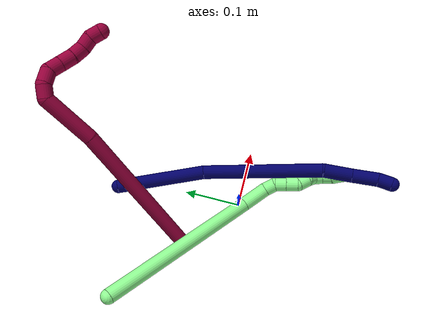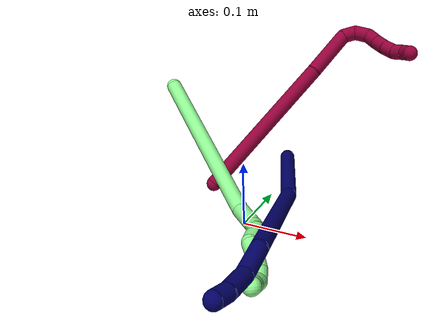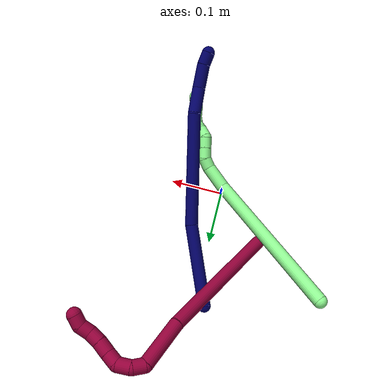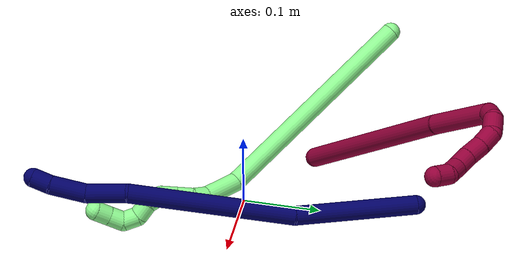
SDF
<sdf version="1.7">
 <world name="default">
  <model name="7">
   <static>0</static>
   <link name="7">
    <collision name="collision-cylinder-e_1_1_4">
     <pose>0.001303 0.028349 0.074705 -0.362692 0.016305 -0.00299</pose>
     <geometry><cylinder><radius>0.0125</radius><length>0.159827</length></cylinder></geometry>
     <surface>
      <friction><ode><mu>1.16</mu><mu2>1.16</mu2><slip1>0</slip1><slip2>0</slip2></ode></friction>
      <contact><ode><kp>1e+06</kp><kd>1</kd><max_vel>0</max_vel><min_depth>0.001</min_depth></ode></contact>
     </surface>
    </collision>
    <visual name="visual-cylinder-e_1_1_4">
     <pose>0.001303 0.028349 0.074705 -0.362692 0.016305 -0.00299</pose>
     <geometry><cylinder><radius>0.0125</radius><length>0.159827</length></cylinder></geometry>
     <material><ambient>0.003922 0 0.403922 1</ambient></material>
    </visual>
    <collision name="collision-cylinder-e_2_4_5">
     <pose>-0.013346 0.109987 0.242123 -0.52166 -0.148079 0.039591</pose>
     <geometry><cylinder><radius>0.0125</radius><length>0.21624</length></cylinder></geometry>
     <surface>
      <friction><ode><mu>1.16</mu><mu2>1.16</mu2><slip1>0</slip1><slip2>0</slip2></ode></friction>
      <contact><ode><kp>1e+06</kp><kd>1</kd><max_vel>0</max_vel><min_depth>0.001</min_depth></ode></contact>
     </surface>
    </collision>
    <visual name="visual-cylinder-e_2_4_5">
     <pose>-0.013346 0.109987 0.242123 -0.52166 -0.148079 0.039591</pose>
     <geometry><cylinder><radius>0.0125</radius><length>0.21624</length></cylinder></geometry>
     <material><ambient>0.003922 0 0.403922 1</ambient></material>
    </visual>
    <collision name="collision-cylinder-e_3_5_6">
     <pose>-0.037415 0.169493 0.358968 -0.252174 -0.314885 0.040242</pose>
     <geometry><cylinder><radius>0.0125</radius><length>0.052418</length></cylinder></geometry>
     <surface>
      <friction><ode><mu>1.16</mu><mu2>1.16</mu2><slip1>0</slip1><slip2>0</slip2></ode></friction>
      <contact><ode><kp>1e+06</kp><kd>1</kd><max_vel>0</max_vel><min_depth>0.001</min_depth></ode></contact>
     </surface>
    </collision>
    <visual name="visual-cylinder-e_3_5_6">
     <pose>-0.037415 0.169493 0.358968 -0.252174 -0.314885 0.040242</pose>
     <geometry><cylinder><radius>0.0125</radius><length>0.052418</length></cylinder></geometry>
     <material><ambient>0.003922 0 0.403922 1</ambient></material>
    </visual>
    <collision name="collision-cylinder-e_4_6_7">
     <pose>-0.052933 0.187127 0.402074 -0.541652 -0.322592 0.090291</pose>
     <geometry><cylinder><radius>0.0125</radius><length>0.046693</length></cylinder></geometry>
     <surface>
      <friction><ode><mu>1.16</mu><mu2>1.16</mu2><slip1>0</slip1><slip2>0</slip2></ode></friction>
      <contact><ode><kp>1e+06</kp><kd>1</kd><max_vel>0</max_vel><min_depth>0.001</min_depth></ode></contact>
     </surface>
    </collision>
    <visual name="visual-cylinder-e_4_6_7">
     <pose>-0.052933 0.187127 0.402074 -0.541652 -0.322592 0.090291</pose>
     <geometry><cylinder><radius>0.0125</radius><length>0.046693</length></cylinder></geometry>
     <material><ambient>0.003922 0 0.403922 1</ambient></material>
    </visual>
    <collision name="collision-cylinder-e_5_7_2">
     <pose>-0.066343 0.204881 0.429864 -0.623347 -0.505371 0.165991</pose>
     <geometry><cylinder><radius>0.0125</radius><length>0.024822</length></cylinder></geometry>
     <surface>
      <friction><ode><mu>1.16</mu><mu2>1.16</mu2><slip1>0</slip1><slip2>0</slip2></ode></friction>
      <contact><ode><kp>1e+06</kp><kd>1</kd><max_vel>0</max_vel><min_depth>0.001</min_depth></ode></contact>
     </surface>
    </collision>
    <visual name="visual-cylinder-e_5_7_2">
     <pose>-0.066343 0.204881 0.429864 -0.623347 -0.505371 0.165991</pose>
     <geometry><cylinder><radius>0.0125</radius><length>0.024822</length></cylinder></geometry>
     <material><ambient>0.003922 0 0.403922 1</ambient></material>
    </visual>
    <collision name="collision-sphere-2">
     <pose>-0.072352 0.211221 0.438681 0 -0 0</pose>
     <geometry><sphere><radius>0.0125</radius></sphere></geometry>
     <surface>
      <friction><ode><mu>1.16</mu><mu2>1.16</mu2><slip1>0</slip1><slip2>0</slip2></ode></friction>
      <contact><ode><kp>1e+06</kp><kd>1</kd><max_vel>0</max_vel><min_depth>0.001</min_depth></ode></contact>
     </surface>
    </collision>
    <visual name="visual-sphere-2">
     <pose>-0.072352 0.211221 0.438681 0 -0 0</pose>
     <geometry><sphere><radius>0.0125</radius></sphere></geometry>
     <material><ambient>0.003922 0 0.403922 1</ambient></material>
    </visual>
    <collision name="collision-sphere-7">
     <pose>-0.060335 0.198542 0.421046 0 -0 0</pose>
     <geometry><sphere><radius>0.0125</radius></sphere></geometry>
     <surface>
      <friction><ode><mu>1.16</mu><mu2>1.16</mu2><slip1>0</slip1><slip2>0</slip2></ode></friction>
      <contact><ode><kp>1e+06</kp><kd>1</kd><max_vel>0</max_vel><min_depth>0.001</min_depth></ode></contact>
     </surface>
    </collision>
    <visual name="visual-sphere-7">
     <pose>-0.060335 0.198542 0.421046 0 -0 0</pose>
     <geometry><sphere><radius>0.0125</radius></sphere></geometry>
     <material><ambient>0.003922 0 0.403922 1</ambient></material>
    </visual>
    <collision name="collision-sphere-6">
     <pose>-0.045532 0.175711 0.383101 0 -0 0</pose>
     <geometry><sphere><radius>0.0125</radius></sphere></geometry>
     <surface>
      <friction><ode><mu>1.16</mu><mu2>1.16</mu2><slip1>0</slip1><slip2>0</slip2></ode></friction>
      <contact><ode><kp>1e+06</kp><kd>1</kd><max_vel>0</max_vel><min_depth>0.001</min_depth></ode></contact>
     </surface>
    </collision>
    <visual name="visual-sphere-6">
     <pose>-0.045532 0.175711 0.383101 0 -0 0</pose>
     <geometry><sphere><radius>0.0125</radius></sphere></geometry>
     <material><ambient>0.003922 0 0.403922 1</ambient></material>
    </visual>
    <collision name="collision-sphere-5">
     <pose>-0.029298 0.163275 0.334836 0 -0 0</pose>
     <geometry><sphere><radius>0.0125</radius></sphere></geometry>
     <surface>
      <friction><ode><mu>1.16</mu><mu2>1.16</mu2><slip1>0</slip1><slip2>0</slip2></ode></friction>
      <contact><ode><kp>1e+06</kp><kd>1</kd><max_vel>0</max_vel><min_depth>0.001</min_depth></ode></contact>
     </surface>
    </collision>
    <visual name="visual-sphere-5">
     <pose>-0.029298 0.163275 0.334836 0 -0 0</pose>
     <geometry><sphere><radius>0.0125</radius></sphere></geometry>
     <material><ambient>0.003922 0 0.403922 1</ambient></material>
    </visual>
    <collision name="collision-sphere-1">
     <geometry><sphere><radius>0.0125</radius></sphere></geometry>
     <surface>
      <friction><ode><mu>1.16</mu><mu2>1.16</mu2><slip1>0</slip1><slip2>0</slip2></ode></friction>
      <contact><ode><kp>1e+06</kp><kd>1</kd><max_vel>0</max_vel><min_depth>0.001</min_depth></ode></contact>
     </surface>
    </collision>
    <visual name="visual-sphere-1">
     <geometry><sphere><radius>0.0125</radius></sphere></geometry>
     <material><ambient>0.003922 0 0.403922 1</ambient></material>
    </visual>
    <collision name="collision-sphere-4">
     <pose>0.002606 0.056698 0.149409 0 -0 0</pose>
     <geometry><sphere><radius>0.0125</radius></sphere></geometry>
     <surface>
      <friction><ode><mu>1.16</mu><mu2>1.16</mu2><slip1>0</slip1><slip2>0</slip2></ode></friction>
      <contact><ode><kp>1e+06</kp><kd>1</kd><max_vel>0</max_vel><min_depth>0.001</min_depth></ode></contact>
     </surface>
    </collision>
    <visual name="visual-sphere-4">
     <pose>0.002606 0.056698 0.149409 0 -0 0</pose>
     <geometry><sphere><radius>0.0125</radius></sphere></geometry>
     <material><ambient>0.003922 0 0.403922 1</ambient></material>
    </visual>
    <inertial>
     <pose>-0.017515 0.102044 0.225114 0 -0 0</pose>
     <mass>0.5</mass>
     <inertia>
      <ixx>0.001241</ixx>
      <ixy>0</ixy>
      <ixz>0</ixz>
      <iyy>0.001139</iyy>
      <iyz>0</iyz>
      <izz>-0.000389</izz>
     </inertia>
    </inertial>
   </link>
   <pose>-0.022331 0.222452 0.012488 1.88867 -0.12878 0.395527</pose>
  </model>
  <model name="8">
   <static>0</static>
   <link name="8">
    <collision name="collision-cylinder-e_1_1_4">
     <pose>-0.026673 -0.001109 0.127289 0.008712 -0.206548 -0.000903</pose>
     <geometry><cylinder><radius>0.0125</radius><length>0.260116</length></cylinder></geometry>
     <surface>
      <friction><ode><mu>1.16</mu><mu2>1.16</mu2><slip1>0</slip1><slip2>0</slip2></ode></friction>
      <contact><ode><kp>1e+06</kp><kd>1</kd><max_vel>0</max_vel><min_depth>0.001</min_depth></ode></contact>
     </surface>
    </collision>
    <visual name="visual-cylinder-e_1_1_4">
     <pose>-0.026673 -0.001109 0.127289 0.008712 -0.206548 -0.000903</pose>
     <geometry><cylinder><radius>0.0125</radius><length>0.260116</length></cylinder></geometry>
     <material><ambient>0.584314 0 0.227451 1</ambient></material>
    </visual>
    <collision name="collision-cylinder-e_2_4_5">
     <pose>-0.068061 -0.00536 0.295876 0.075946 -0.341388 -0.013097</pose>
     <geometry><cylinder><radius>0.0125</radius><length>0.087908</length></cylinder></geometry>
     <surface>
      <friction><ode><mu>1.16</mu><mu2>1.16</mu2><slip1>0</slip1><slip2>0</slip2></ode></friction>
      <contact><ode><kp>1e+06</kp><kd>1</kd><max_vel>0</max_vel><min_depth>0.001</min_depth></ode></contact>
     </surface>
    </collision>
    <visual name="visual-cylinder-e_2_4_5">
     <pose>-0.068061 -0.00536 0.295876 0.075946 -0.341388 -0.013097</pose>
     <geometry><cylinder><radius>0.0125</radius><length>0.087908</length></cylinder></geometry>
     <material><ambient>0.584314 0 0.227451 1</ambient></material>
    </visual>
    <collision name="collision-cylinder-e_3_5_6">
     <pose>-0.083334 -0.002085 0.345801 -0.639559 -0.051763 0.017144</pose>
     <geometry><cylinder><radius>0.0125</radius><length>0.021534</length></cylinder></geometry>
     <surface>
      <friction><ode><mu>1.16</mu><mu2>1.16</mu2><slip1>0</slip1><slip2>0</slip2></ode></friction>
      <contact><ode><kp>1e+06</kp><kd>1</kd><max_vel>0</max_vel><min_depth>0.001</min_depth></ode></contact>
     </surface>
    </collision>
    <visual name="visual-cylinder-e_3_5_6">
     <pose>-0.083334 -0.002085 0.345801 -0.639559 -0.051763 0.017144</pose>
     <geometry><cylinder><radius>0.0125</radius><length>0.021534</length></cylinder></geometry>
     <material><ambient>0.584314 0 0.227451 1</ambient></material>
    </visual>
    <collision name="collision-cylinder-e_4_6_7">
     <pose>-0.084142 0.015449 0.359107 -1.17248 -0.020809 0.01382</pose>
     <geometry><cylinder><radius>0.0125</radius><length>0.024127</length></cylinder></geometry>
     <surface>
      <friction><ode><mu>1.16</mu><mu2>1.16</mu2><slip1>0</slip1><slip2>0</slip2></ode></friction>
      <contact><ode><kp>1e+06</kp><kd>1</kd><max_vel>0</max_vel><min_depth>0.001</min_depth></ode></contact>
     </surface>
    </collision>
    <visual name="visual-cylinder-e_4_6_7">
     <pose>-0.084142 0.015449 0.359107 -1.17248 -0.020809 0.01382</pose>
     <geometry><cylinder><radius>0.0125</radius><length>0.024127</length></cylinder></geometry>
     <material><ambient>0.584314 0 0.227451 1</ambient></material>
    </visual>
    <collision name="collision-cylinder-e_5_7_8">
     <pose>-0.080517 0.036807 0.362768 -1.66976 0.36015 -0.396747</pose>
     <geometry><cylinder><radius>0.0125</radius><length>0.021996</length></cylinder></geometry>
     <surface>
      <friction><ode><mu>1.16</mu><mu2>1.16</mu2><slip1>0</slip1><slip2>0</slip2></ode></friction>
      <contact><ode><kp>1e+06</kp><kd>1</kd><max_vel>0</max_vel><min_depth>0.001</min_depth></ode></contact>
     </surface>
    </collision>
    <visual name="visual-cylinder-e_5_7_8">
     <pose>-0.080517 0.036807 0.362768 -1.66976 0.36015 -0.396747</pose>
     <geometry><cylinder><radius>0.0125</radius><length>0.021996</length></cylinder></geometry>
     <material><ambient>0.584314 0 0.227451 1</ambient></material>
    </visual>
    <collision name="collision-cylinder-e_6_8_9">
     <pose>-0.071065 0.057245 0.361196 -1.62516 0.499859 -0.526555</pose>
     <geometry><cylinder><radius>0.0125</radius><length>0.023268</length></cylinder></geometry>
     <surface>
      <friction><ode><mu>1.16</mu><mu2>1.16</mu2><slip1>0</slip1><slip2>0</slip2></ode></friction>
      <contact><ode><kp>1e+06</kp><kd>1</kd><max_vel>0</max_vel><min_depth>0.001</min_depth></ode></contact>
     </surface>
    </collision>
    <visual name="visual-cylinder-e_6_8_9">
     <pose>-0.071065 0.057245 0.361196 -1.62516 0.499859 -0.526555</pose>
     <geometry><cylinder><radius>0.0125</radius><length>0.023268</length></cylinder></geometry>
     <material><ambient>0.584314 0 0.227451 1</ambient></material>
    </visual>
    <collision name="collision-cylinder-e_7_9_10">
     <pose>-0.061124 0.076983 0.361418 -1.48958 0.427744 -0.395241</pose>
     <geometry><cylinder><radius>0.0125</radius><length>0.021045</length></cylinder></geometry>
     <surface>
      <friction><ode><mu>1.16</mu><mu2>1.16</mu2><slip1>0</slip1><slip2>0</slip2></ode></friction>
      <contact><ode><kp>1e+06</kp><kd>1</kd><max_vel>0</max_vel><min_depth>0.001</min_depth></ode></contact>
     </surface>
    </collision>
    <visual name="visual-cylinder-e_7_9_10">
     <pose>-0.061124 0.076983 0.361418 -1.48958 0.427744 -0.395241</pose>
     <geometry><cylinder><radius>0.0125</radius><length>0.021045</length></cylinder></geometry>
     <material><ambient>0.584314 0 0.227451 1</ambient></material>
    </visual>
    <collision name="collision-cylinder-e_8_10_11">
     <pose>-0.052107 0.09459 0.365849 -1.14526 0.48379 -0.315478</pose>
     <geometry><cylinder><radius>0.0125</radius><length>0.020001</length></cylinder></geometry>
     <surface>
      <friction><ode><mu>1.16</mu><mu2>1.16</mu2><slip1>0</slip1><slip2>0</slip2></ode></friction>
      <contact><ode><kp>1e+06</kp><kd>1</kd><max_vel>0</max_vel><min_depth>0.001</min_depth></ode></contact>
     </surface>
    </collision>
    <visual name="visual-cylinder-e_8_10_11">
     <pose>-0.052107 0.09459 0.365849 -1.14526 0.48379 -0.315478</pose>
     <geometry><cylinder><radius>0.0125</radius><length>0.020001</length></cylinder></geometry>
     <material><ambient>0.584314 0 0.227451 1</ambient></material>
    </visual>
    <collision name="collision-cylinder-e_9_11_2">
     <pose>-0.039391 0.108525 0.370235 -1.44685 0.937703 -0.841264</pose>
     <geometry><cylinder><radius>0.0125</radius><length>0.020005</length></cylinder></geometry>
     <surface>
      <friction><ode><mu>1.16</mu><mu2>1.16</mu2><slip1>0</slip1><slip2>0</slip2></ode></friction>
      <contact><ode><kp>1e+06</kp><kd>1</kd><max_vel>0</max_vel><min_depth>0.001</min_depth></ode></contact>
     </surface>
    </collision>
    <visual name="visual-cylinder-e_9_11_2">
     <pose>-0.039391 0.108525 0.370235 -1.44685 0.937703 -0.841264</pose>
     <geometry><cylinder><radius>0.0125</radius><length>0.020005</length></cylinder></geometry>
     <material><ambient>0.584314 0 0.227451 1</ambient></material>
    </visual>
    <collision name="collision-sphere-2">
     <pose>-0.031327 0.114398 0.370967 0 -0 0</pose>
     <geometry><sphere><radius>0.0125</radius></sphere></geometry>
     <surface>
      <friction><ode><mu>1.16</mu><mu2>1.16</mu2><slip1>0</slip1><slip2>0</slip2></ode></friction>
      <contact><ode><kp>1e+06</kp><kd>1</kd><max_vel>0</max_vel><min_depth>0.001</min_depth></ode></contact>
     </surface>
    </collision>
    <visual name="visual-sphere-2">
     <pose>-0.031327 0.114398 0.370967 0 -0 0</pose>
     <geometry><sphere><radius>0.0125</radius></sphere></geometry>
     <material><ambient>0.584314 0 0.227451 1</ambient></material>
    </visual>
    <collision name="collision-sphere-11">
     <pose>-0.047455 0.102653 0.369504 0 -0 0</pose>
     <geometry><sphere><radius>0.0125</radius></sphere></geometry>
     <surface>
      <friction><ode><mu>1.16</mu><mu2>1.16</mu2><slip1>0</slip1><slip2>0</slip2></ode></friction>
      <contact><ode><kp>1e+06</kp><kd>1</kd><max_vel>0</max_vel><min_depth>0.001</min_depth></ode></contact>
     </surface>
    </collision>
    <visual name="visual-sphere-11">
     <pose>-0.047455 0.102653 0.369504 0 -0 0</pose>
     <geometry><sphere><radius>0.0125</radius></sphere></geometry>
     <material><ambient>0.584314 0 0.227451 1</ambient></material>
    </visual>
    <collision name="collision-sphere-10">
     <pose>-0.056759 0.086526 0.362195 0 -0 0</pose>
     <geometry><sphere><radius>0.0125</radius></sphere></geometry>
     <surface>
      <friction><ode><mu>1.16</mu><mu2>1.16</mu2><slip1>0</slip1><slip2>0</slip2></ode></friction>
      <contact><ode><kp>1e+06</kp><kd>1</kd><max_vel>0</max_vel><min_depth>0.001</min_depth></ode></contact>
     </surface>
    </collision>
    <visual name="visual-sphere-10">
     <pose>-0.056759 0.086526 0.362195 0 -0 0</pose>
     <geometry><sphere><radius>0.0125</radius></sphere></geometry>
     <material><ambient>0.584314 0 0.227451 1</ambient></material>
    </visual>
    <collision name="collision-sphere-9">
     <pose>-0.065489 0.06744 0.360641 0 -0 0</pose>
     <geometry><sphere><radius>0.0125</radius></sphere></geometry>
     <surface>
      <friction><ode><mu>1.16</mu><mu2>1.16</mu2><slip1>0</slip1><slip2>0</slip2></ode></friction>
      <contact><ode><kp>1e+06</kp><kd>1</kd><max_vel>0</max_vel><min_depth>0.001</min_depth></ode></contact>
     </surface>
    </collision>
    <visual name="visual-sphere-9">
     <pose>-0.065489 0.06744 0.360641 0 -0 0</pose>
     <geometry><sphere><radius>0.0125</radius></sphere></geometry>
     <material><ambient>0.584314 0 0.227451 1</ambient></material>
    </visual>
    <collision name="collision-sphere-4">
     <pose>-0.053345 -0.002218 0.254577 0 -0 0</pose>
     <geometry><sphere><radius>0.0125</radius></sphere></geometry>
     <surface>
      <friction><ode><mu>1.16</mu><mu2>1.16</mu2><slip1>0</slip1><slip2>0</slip2></ode></friction>
      <contact><ode><kp>1e+06</kp><kd>1</kd><max_vel>0</max_vel><min_depth>0.001</min_depth></ode></contact>
     </surface>
    </collision>
    <visual name="visual-sphere-4">
     <pose>-0.053345 -0.002218 0.254577 0 -0 0</pose>
     <geometry><sphere><radius>0.0125</radius></sphere></geometry>
     <material><ambient>0.584314 0 0.227451 1</ambient></material>
    </visual>
    <collision name="collision-sphere-1">
     <geometry><sphere><radius>0.0125</radius></sphere></geometry>
     <surface>
      <friction><ode><mu>1.16</mu><mu2>1.16</mu2><slip1>0</slip1><slip2>0</slip2></ode></friction>
      <contact><ode><kp>1e+06</kp><kd>1</kd><max_vel>0</max_vel><min_depth>0.001</min_depth></ode></contact>
     </surface>
    </collision>
    <visual name="visual-sphere-1">
     <geometry><sphere><radius>0.0125</radius></sphere></geometry>
     <material><ambient>0.584314 0 0.227451 1</ambient></material>
    </visual>
    <collision name="collision-sphere-8">
     <pose>-0.076641 0.047049 0.361751 0 -0 0</pose>
     <geometry><sphere><radius>0.0125</radius></sphere></geometry>
     <surface>
      <friction><ode><mu>1.16</mu><mu2>1.16</mu2><slip1>0</slip1><slip2>0</slip2></ode></friction>
      <contact><ode><kp>1e+06</kp><kd>1</kd><max_vel>0</max_vel><min_depth>0.001</min_depth></ode></contact>
     </surface>
    </collision>
    <visual name="visual-sphere-8">
     <pose>-0.076641 0.047049 0.361751 0 -0 0</pose>
     <geometry><sphere><radius>0.0125</radius></sphere></geometry>
     <material><ambient>0.584314 0 0.227451 1</ambient></material>
    </visual>
    <collision name="collision-sphere-5">
     <pose>-0.082777 -0.008503 0.337174 0 -0 0</pose>
     <geometry><sphere><radius>0.0125</radius></sphere></geometry>
     <surface>
      <friction><ode><mu>1.16</mu><mu2>1.16</mu2><slip1>0</slip1><slip2>0</slip2></ode></friction>
      <contact><ode><kp>1e+06</kp><kd>1</kd><max_vel>0</max_vel><min_depth>0.001</min_depth></ode></contact>
     </surface>
    </collision>
    <visual name="visual-sphere-5">
     <pose>-0.082777 -0.008503 0.337174 0 -0 0</pose>
     <geometry><sphere><radius>0.0125</radius></sphere></geometry>
     <material><ambient>0.584314 0 0.227451 1</ambient></material>
    </visual>
    <collision name="collision-sphere-6">
     <pose>-0.083891 0.004332 0.354429 0 -0 0</pose>
     <geometry><sphere><radius>0.0125</radius></sphere></geometry>
     <surface>
      <friction><ode><mu>1.16</mu><mu2>1.16</mu2><slip1>0</slip1><slip2>0</slip2></ode></friction>
      <contact><ode><kp>1e+06</kp><kd>1</kd><max_vel>0</max_vel><min_depth>0.001</min_depth></ode></contact>
     </surface>
    </collision>
    <visual name="visual-sphere-6">
     <pose>-0.083891 0.004332 0.354429 0 -0 0</pose>
     <geometry><sphere><radius>0.0125</radius></sphere></geometry>
     <material><ambient>0.584314 0 0.227451 1</ambient></material>
    </visual>
    <collision name="collision-sphere-7">
     <pose>-0.084393 0.026565 0.363785 0 -0 0</pose>
     <geometry><sphere><radius>0.0125</radius></sphere></geometry>
     <surface>
      <friction><ode><mu>1.16</mu><mu2>1.16</mu2><slip1>0</slip1><slip2>0</slip2></ode></friction>
      <contact><ode><kp>1e+06</kp><kd>1</kd><max_vel>0</max_vel><min_depth>0.001</min_depth></ode></contact>
     </surface>
    </collision>
    <visual name="visual-sphere-7">
     <pose>-0.084393 0.026565 0.363785 0 -0 0</pose>
     <geometry><sphere><radius>0.0125</radius></sphere></geometry>
     <material><ambient>0.584314 0 0.227451 1</ambient></material>
    </visual>
    <inertial>
     <pose>-0.046574 0.014786 0.227888 0 -0 0</pose>
     <mass>0.5</mass>
     <inertia>
      <ixx>0.001504</ixx>
      <ixy>0</ixy>
      <ixz>0</ixz>
      <iyy>0.001545</iyy>
      <iyz>0</iyz>
      <izz>0.000355</izz>
     </inertia>
    </inertial>
   </link>
   <pose>-0.094558 0.076383 0.011497 -0.548713 -0.519821 -1.44415</pose>
  </model>
  <model name="13">
   <static>0</static>
   <link name="13">
    <collision name="collision-cylinder-e_1_1_4">
     <pose>0.04517 -0.069839 0.119369 0.529369 0.315689 0.08623</pose>
     <geometry><cylinder><radius>0.0125</radius><length>0.290977</length></cylinder></geometry>
     <surface>
      <friction><ode><mu>1.16</mu><mu2>1.16</mu2><slip1>0</slip1><slip2>0</slip2></ode></friction>
      <contact><ode><kp>1e+06</kp><kd>1</kd><max_vel>0</max_vel><min_depth>0.001</min_depth></ode></contact>
     </surface>
    </collision>
    <visual name="visual-cylinder-e_1_1_4">
     <pose>0.04517 -0.069839 0.119369 0.529369 0.315689 0.08623</pose>
     <geometry><cylinder><radius>0.0125</radius><length>0.290977</length></cylinder></geometry>
     <material><ambient>0.564706 0.984314 0.572549 1</ambient></material>
    </visual>
    <collision name="collision-cylinder-e_2_4_5">
     <pose>0.103971 -0.154241 0.251774 0.840657 0.609019 0.279123</pose>
     <geometry><cylinder><radius>0.0125</radius><length>0.047657</length></cylinder></geometry>
     <surface>
      <friction><ode><mu>1.16</mu><mu2>1.16</mu2><slip1>0</slip1><slip2>0</slip2></ode></friction>
      <contact><ode><kp>1e+06</kp><kd>1</kd><max_vel>0</max_vel><min_depth>0.001</min_depth></ode></contact>
     </surface>
    </collision>
    <visual name="visual-cylinder-e_2_4_5">
     <pose>0.103971 -0.154241 0.251774 0.840657 0.609019 0.279123</pose>
     <geometry><cylinder><radius>0.0125</radius><length>0.047657</length></cylinder></geometry>
     <material><ambient>0.564706 0.984314 0.572549 1</ambient></material>
    </visual>
    <collision name="collision-cylinder-e_3_5_6">
     <pose>0.125503 -0.173982 0.268286 0.979709 0.902401 0.505654</pose>
     <geometry><cylinder><radius>0.0125</radius><length>0.020132</length></cylinder></geometry>
     <surface>
      <friction><ode><mu>1.16</mu><mu2>1.16</mu2><slip1>0</slip1><slip2>0</slip2></ode></friction>
      <contact><ode><kp>1e+06</kp><kd>1</kd><max_vel>0</max_vel><min_depth>0.001</min_depth></ode></contact>
     </surface>
    </collision>
    <visual name="visual-cylinder-e_3_5_6">
     <pose>0.125503 -0.173982 0.268286 0.979709 0.902401 0.505654</pose>
     <geometry><cylinder><radius>0.0125</radius><length>0.020132</length></cylinder></geometry>
     <material><ambient>0.564706 0.984314 0.572549 1</ambient></material>
    </visual>
    <collision name="collision-cylinder-e_4_6_7">
     <pose>0.142486 -0.179927 0.276067 0.175705 1.12212 0.11059</pose>
     <geometry><cylinder><radius>0.0125</radius><length>0.020162</length></cylinder></geometry>
     <surface>
      <friction><ode><mu>1.16</mu><mu2>1.16</mu2><slip1>0</slip1><slip2>0</slip2></ode></friction>
      <contact><ode><kp>1e+06</kp><kd>1</kd><max_vel>0</max_vel><min_depth>0.001</min_depth></ode></contact>
     </surface>
    </collision>
    <visual name="visual-cylinder-e_4_6_7">
     <pose>0.142486 -0.179927 0.276067 0.175705 1.12212 0.11059</pose>
     <geometry><cylinder><radius>0.0125</radius><length>0.020162</length></cylinder></geometry>
     <material><ambient>0.564706 0.984314 0.572549 1</ambient></material>
    </visual>
    <collision name="collision-cylinder-e_5_7_8">
     <pose>0.160941 -0.181522 0.284832 0.184177 1.1201 0.115681</pose>
     <geometry><cylinder><radius>0.0125</radius><length>0.020824</length></cylinder></geometry>
     <surface>
      <friction><ode><mu>1.16</mu><mu2>1.16</mu2><slip1>0</slip1><slip2>0</slip2></ode></friction>
      <contact><ode><kp>1e+06</kp><kd>1</kd><max_vel>0</max_vel><min_depth>0.001</min_depth></ode></contact>
     </surface>
    </collision>
    <visual name="visual-cylinder-e_5_7_8">
     <pose>0.160941 -0.181522 0.284832 0.184177 1.1201 0.115681</pose>
     <geometry><cylinder><radius>0.0125</radius><length>0.020824</length></cylinder></geometry>
     <material><ambient>0.564706 0.984314 0.572549 1</ambient></material>
    </visual>
    <collision name="collision-cylinder-e_6_8_9">
     <pose>0.175309 -0.186659 0.296921 0.513887 0.518167 0.139055</pose>
     <geometry><cylinder><radius>0.0125</radius><length>0.020172</length></cylinder></geometry>
     <surface>
      <friction><ode><mu>1.16</mu><mu2>1.16</mu2><slip1>0</slip1><slip2>0</slip2></ode></friction>
      <contact><ode><kp>1e+06</kp><kd>1</kd><max_vel>0</max_vel><min_depth>0.001</min_depth></ode></contact>
     </surface>
    </collision>
    <visual name="visual-cylinder-e_6_8_9">
     <pose>0.175309 -0.186659 0.296921 0.513887 0.518167 0.139055</pose>
     <geometry><cylinder><radius>0.0125</radius><length>0.020172</length></cylinder></geometry>
     <material><ambient>0.564706 0.984314 0.572549 1</ambient></material>
    </visual>
    <collision name="collision-cylinder-e_7_9_10">
     <pose>0.181332 -0.192942 0.314334 0.199225 0.102576 0.010261</pose>
     <geometry><cylinder><radius>0.0125</radius><length>0.020067</length></cylinder></geometry>
     <surface>
      <friction><ode><mu>1.16</mu><mu2>1.16</mu2><slip1>0</slip1><slip2>0</slip2></ode></friction>
      <contact><ode><kp>1e+06</kp><kd>1</kd><max_vel>0</max_vel><min_depth>0.001</min_depth></ode></contact>
     </surface>
    </collision>
    <visual name="visual-cylinder-e_7_9_10">
     <pose>0.181332 -0.192942 0.314334 0.199225 0.102576 0.010261</pose>
     <geometry><cylinder><radius>0.0125</radius><length>0.020067</length></cylinder></geometry>
     <material><ambient>0.564706 0.984314 0.572549 1</ambient></material>
    </visual>
    <collision name="collision-cylinder-e_8_10_11">
     <pose>0.188818 -0.19629 0.331629 0.180787 0.702063 0.06636</pose>
     <geometry><cylinder><radius>0.0125</radius><length>0.020003</length></cylinder></geometry>
     <surface>
      <friction><ode><mu>1.16</mu><mu2>1.16</mu2><slip1>0</slip1><slip2>0</slip2></ode></friction>
      <contact><ode><kp>1e+06</kp><kd>1</kd><max_vel>0</max_vel><min_depth>0.001</min_depth></ode></contact>
     </surface>
    </collision>
    <visual name="visual-cylinder-e_8_10_11">
     <pose>0.188818 -0.19629 0.331629 0.180787 0.702063 0.06636</pose>
     <geometry><cylinder><radius>0.0125</radius><length>0.020003</length></cylinder></geometry>
     <material><ambient>0.564706 0.984314 0.572549 1</ambient></material>
    </visual>
    <collision name="collision-cylinder-e_9_11_12">
     <pose>0.205173 -0.198424 0.340365 0.556212 1.42619 0.484191</pose>
     <geometry><cylinder><radius>0.0125</radius><length>0.02</length></cylinder></geometry>
     <surface>
      <friction><ode><mu>1.16</mu><mu2>1.16</mu2><slip1>0</slip1><slip2>0</slip2></ode></friction>
      <contact><ode><kp>1e+06</kp><kd>1</kd><max_vel>0</max_vel><min_depth>0.001</min_depth></ode></contact>
     </surface>
    </collision>
    <visual name="visual-cylinder-e_9_11_12">
     <pose>0.205173 -0.198424 0.340365 0.556212 1.42619 0.484191</pose>
     <geometry><cylinder><radius>0.0125</radius><length>0.02</length></cylinder></geometry>
     <material><ambient>0.564706 0.984314 0.572549 1</ambient></material>
    </visual>
    <collision name="collision-cylinder-e_10_12_2">
     <pose>0.224744 -0.201697 0.341973 1.41911 1.31391 1.16995</pose>
     <geometry><cylinder><radius>0.0125</radius><length>0.020007</length></cylinder></geometry>
     <surface>
      <friction><ode><mu>1.16</mu><mu2>1.16</mu2><slip1>0</slip1><slip2>0</slip2></ode></friction>
      <contact><ode><kp>1e+06</kp><kd>1</kd><max_vel>0</max_vel><min_depth>0.001</min_depth></ode></contact>
     </surface>
    </collision>
    <visual name="visual-cylinder-e_10_12_2">
     <pose>0.224744 -0.201697 0.341973 1.41911 1.31391 1.16995</pose>
     <geometry><cylinder><radius>0.0125</radius><length>0.020007</length></cylinder></geometry>
     <material><ambient>0.564706 0.984314 0.572549 1</ambient></material>
    </visual>
    <collision name="collision-sphere-2">
     <pose>0.234419 -0.20421 0.342357 0 -0 0</pose>
     <geometry><sphere><radius>0.0125</radius></sphere></geometry>
     <surface>
      <friction><ode><mu>1.16</mu><mu2>1.16</mu2><slip1>0</slip1><slip2>0</slip2></ode></friction>
      <contact><ode><kp>1e+06</kp><kd>1</kd><max_vel>0</max_vel><min_depth>0.001</min_depth></ode></contact>
     </surface>
    </collision>
    <visual name="visual-sphere-2">
     <pose>0.234419 -0.20421 0.342357 0 -0 0</pose>
     <geometry><sphere><radius>0.0125</radius></sphere></geometry>
     <material><ambient>0.564706 0.984314 0.572549 1</ambient></material>
    </visual>
    <collision name="collision-sphere-12">
     <pose>0.215068 -0.199185 0.341589 0 -0 0</pose>
     <geometry><sphere><radius>0.0125</radius></sphere></geometry>
     <surface>
      <friction><ode><mu>1.16</mu><mu2>1.16</mu2><slip1>0</slip1><slip2>0</slip2></ode></friction>
      <contact><ode><kp>1e+06</kp><kd>1</kd><max_vel>0</max_vel><min_depth>0.001</min_depth></ode></contact>
     </surface>
    </collision>
    <visual name="visual-sphere-12">
     <pose>0.215068 -0.199185 0.341589 0 -0 0</pose>
     <geometry><sphere><radius>0.0125</radius></sphere></geometry>
     <material><ambient>0.564706 0.984314 0.572549 1</ambient></material>
    </visual>
    <collision name="collision-sphere-11">
     <pose>0.195277 -0.197663 0.339141 0 -0 0</pose>
     <geometry><sphere><radius>0.0125</radius></sphere></geometry>
     <surface>
      <friction><ode><mu>1.16</mu><mu2>1.16</mu2><slip1>0</slip1><slip2>0</slip2></ode></friction>
      <contact><ode><kp>1e+06</kp><kd>1</kd><max_vel>0</max_vel><min_depth>0.001</min_depth></ode></contact>
     </surface>
    </collision>
    <visual name="visual-sphere-11">
     <pose>0.195277 -0.197663 0.339141 0 -0 0</pose>
     <geometry><sphere><radius>0.0125</radius></sphere></geometry>
     <material><ambient>0.564706 0.984314 0.572549 1</ambient></material>
    </visual>
    <collision name="collision-sphere-10">
     <pose>0.182359 -0.194917 0.324117 0 -0 0</pose>
     <geometry><sphere><radius>0.0125</radius></sphere></geometry>
     <surface>
      <friction><ode><mu>1.16</mu><mu2>1.16</mu2><slip1>0</slip1><slip2>0</slip2></ode></friction>
      <contact><ode><kp>1e+06</kp><kd>1</kd><max_vel>0</max_vel><min_depth>0.001</min_depth></ode></contact>
     </surface>
    </collision>
    <visual name="visual-sphere-10">
     <pose>0.182359 -0.194917 0.324117 0 -0 0</pose>
     <geometry><sphere><radius>0.0125</radius></sphere></geometry>
     <material><ambient>0.564706 0.984314 0.572549 1</ambient></material>
    </visual>
    <collision name="collision-sphere-9">
     <pose>0.180304 -0.190966 0.304551 0 -0 0</pose>
     <geometry><sphere><radius>0.0125</radius></sphere></geometry>
     <surface>
      <friction><ode><mu>1.16</mu><mu2>1.16</mu2><slip1>0</slip1><slip2>0</slip2></ode></friction>
      <contact><ode><kp>1e+06</kp><kd>1</kd><max_vel>0</max_vel><min_depth>0.001</min_depth></ode></contact>
     </surface>
    </collision>
    <visual name="visual-sphere-9">
     <pose>0.180304 -0.190966 0.304551 0 -0 0</pose>
     <geometry><sphere><radius>0.0125</radius></sphere></geometry>
     <material><ambient>0.564706 0.984314 0.572549 1</ambient></material>
    </visual>
    <collision name="collision-sphere-4">
     <pose>0.09034 -0.139678 0.238738 0 -0 0</pose>
     <geometry><sphere><radius>0.0125</radius></sphere></geometry>
     <surface>
      <friction><ode><mu>1.16</mu><mu2>1.16</mu2><slip1>0</slip1><slip2>0</slip2></ode></friction>
      <contact><ode><kp>1e+06</kp><kd>1</kd><max_vel>0</max_vel><min_depth>0.001</min_depth></ode></contact>
     </surface>
    </collision>
    <visual name="visual-sphere-4">
     <pose>0.09034 -0.139678 0.238738 0 -0 0</pose>
     <geometry><sphere><radius>0.0125</radius></sphere></geometry>
     <material><ambient>0.564706 0.984314 0.572549 1</ambient></material>
    </visual>
    <collision name="collision-sphere-1">
     <geometry><sphere><radius>0.0125</radius></sphere></geometry>
     <surface>
      <friction><ode><mu>1.16</mu><mu2>1.16</mu2><slip1>0</slip1><slip2>0</slip2></ode></friction>
      <contact><ode><kp>1e+06</kp><kd>1</kd><max_vel>0</max_vel><min_depth>0.001</min_depth></ode></contact>
     </surface>
    </collision>
    <visual name="visual-sphere-1">
     <geometry><sphere><radius>0.0125</radius></sphere></geometry>
     <material><ambient>0.564706 0.984314 0.572549 1</ambient></material>
    </visual>
    <collision name="collision-sphere-8">
     <pose>0.170313 -0.182352 0.28929 0 -0 0</pose>
     <geometry><sphere><radius>0.0125</radius></sphere></geometry>
     <surface>
      <friction><ode><mu>1.16</mu><mu2>1.16</mu2><slip1>0</slip1><slip2>0</slip2></ode></friction>
      <contact><ode><kp>1e+06</kp><kd>1</kd><max_vel>0</max_vel><min_depth>0.001</min_depth></ode></contact>
     </surface>
    </collision>
    <visual name="visual-sphere-8">
     <pose>0.170313 -0.182352 0.28929 0 -0 0</pose>
     <geometry><sphere><radius>0.0125</radius></sphere></geometry>
     <material><ambient>0.564706 0.984314 0.572549 1</ambient></material>
    </visual>
    <collision name="collision-sphere-5">
     <pose>0.117603 -0.168803 0.264809 0 -0 0</pose>
     <geometry><sphere><radius>0.0125</radius></sphere></geometry>
     <surface>
      <friction><ode><mu>1.16</mu><mu2>1.16</mu2><slip1>0</slip1><slip2>0</slip2></ode></friction>
      <contact><ode><kp>1e+06</kp><kd>1</kd><max_vel>0</max_vel><min_depth>0.001</min_depth></ode></contact>
     </surface>
    </collision>
    <visual name="visual-sphere-5">
     <pose>0.117603 -0.168803 0.264809 0 -0 0</pose>
     <geometry><sphere><radius>0.0125</radius></sphere></geometry>
     <material><ambient>0.564706 0.984314 0.572549 1</ambient></material>
    </visual>
    <collision name="collision-sphere-6">
     <pose>0.133403 -0.179162 0.271762 0 -0 0</pose>
     <geometry><sphere><radius>0.0125</radius></sphere></geometry>
     <surface>
      <friction><ode><mu>1.16</mu><mu2>1.16</mu2><slip1>0</slip1><slip2>0</slip2></ode></friction>
      <contact><ode><kp>1e+06</kp><kd>1</kd><max_vel>0</max_vel><min_depth>0.001</min_depth></ode></contact>
     </surface>
    </collision>
    <visual name="visual-sphere-6">
     <pose>0.133403 -0.179162 0.271762 0 -0 0</pose>
     <geometry><sphere><radius>0.0125</radius></sphere></geometry>
     <material><ambient>0.564706 0.984314 0.572549 1</ambient></material>
    </visual>
    <collision name="collision-sphere-7">
     <pose>0.151569 -0.180691 0.280373 0 -0 0</pose>
     <geometry><sphere><radius>0.0125</radius></sphere></geometry>
     <surface>
      <friction><ode><mu>1.16</mu><mu2>1.16</mu2><slip1>0</slip1><slip2>0</slip2></ode></friction>
      <contact><ode><kp>1e+06</kp><kd>1</kd><max_vel>0</max_vel><min_depth>0.001</min_depth></ode></contact>
     </surface>
    </collision>
    <visual name="visual-sphere-7">
     <pose>0.151569 -0.180691 0.280373 0 -0 0</pose>
     <geometry><sphere><radius>0.0125</radius></sphere></geometry>
     <material><ambient>0.564706 0.984314 0.572549 1</ambient></material>
    </visual>
    <inertial>
     <pose>0.092802 -0.116299 0.192421 0 -0 0</pose>
     <mass>0.5</mass>
     <inertia>
      <ixx>0.002161</ixx>
      <ixy>0</ixy>
      <ixz>0</ixz>
      <iyy>0.001979</iyy>
      <iyz>0</iyz>
      <izz>0.000371</izz>
     </inertia>
    </inertial>
   </link>
   <pose>-0.212198 0.15345 0.143871 -2.81927 -0.507127 -1.55353</pose>
  </model>
 </world>
</sdf>
